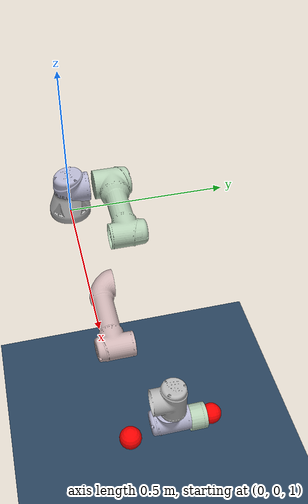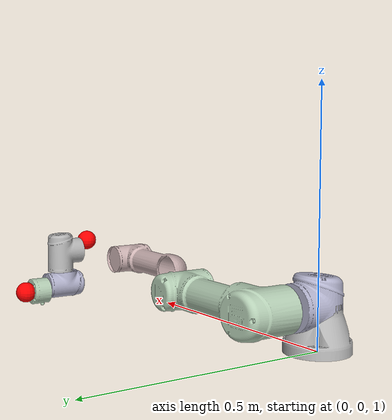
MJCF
<mujoco model="ur5">
  <option iterations="50" timestep="0.002" solver="PGS" gravity="0 0 -9.81" cone="elliptic"/>

  <compiler angle="radian" meshdir="meshes" eulerseq="zyx" autolimits="true" />

  <default>
    <joint limited="true" damping="0.01" armature="0.01" frictionloss="0.01" />
    <geom condim="3" contype="1" conaffinity="15" friction="0.9 0.2 0.2" solref="0.001 2" />
    <motor ctrllimited="true" />
    <default class="link">
      <geom material="link" condim="3" contype="1" conaffinity="0" />
    </default>
  </default>

  <asset>
    <mesh name="base" file="base.stl" />
    <mesh name="shoulder" file="shoulder.stl" />
    <mesh name="upperarm" file="upperarm.stl" />
    <mesh name="forearm" file="forearm.stl" />
    <mesh name="wrist1" file="wrist1.stl" />
    <mesh name="wrist2" file="wrist2.stl" />
    <mesh name="wrist3" file="wrist3.stl" />
    <material name="link" rgba="0.5 0.9 0.2 1" />
    <texture name="skybox" type="skybox" builtin="gradient" rgb1="0.2 0.3 0.4" rgb2="0 0 0" width="1000" height="1000" mark="random" random="0.001" markrgb="1 1 1"/>
    <texture type="2d" name="groundplane" builtin="checker" mark="edge" rgb1="0.2 0.3 0.4" rgb2="0.1 0.2 0.3" markrgb="0.8 0.8 0.8" width="1000" height="1000"/>
    <material name="groundplane" texture="groundplane" texuniform="true" texrepeat="5 5" reflectance="0.2"/>
  </asset>

  <worldbody>
    <light directional="true" diffuse="0.4 0.4 0.4" specular="0.1 0.1 0.1" pos="0 0 5.0" dir="0 0 -1" castshadow="false" />
    <light directional="true" diffuse="0.6 0.6 0.6" specular="0.2 0.2 0.2" pos="0 0 4" dir="0 0 -1" />
    <geom name="ground" type="plane" pos="0 0 0" size="100 100 0.001" quat="1 0 0 0" material="groundplane" condim="3" conaffinity="15" />
    <camera name="fixed" pos="0 -3.0 0.6831486113504706" xyaxes="1 0 0 0 0 1" />
    <camera name="track" mode="trackcom" pos="0 -3.0 0.6831486113504706" xyaxes="1 0 0 0 0 1" />
    <body name="root" pos="0 0 1" quat="1 0 0 0">
      <site name="imu" size="0.01" pos="0 0 0" />
      <geom quat="-1 0 0 0" type="mesh" rgba="0.7 0.7 0.7 1" mesh="base"  class="link" />
      <body name="shoulder_link" pos="0 0 0.089159" quat="0 0 0 1">
        <inertial pos="0 0 0" mass="3.7" diaginertia="0.0149724 0.0149724 0.0104063" />
        <joint name="shoulder_pan_joint" pos="0 0 0" axis="0 0 1" range="-6.28319 6.28319" actuatorfrcrange="-150 150" />
        <geom quat="0 0 0 1" type="mesh" rgba="0.7 0.7 0.8 1" mesh="shoulder"  class="link" />
        <body name="upper_arm_link" quat="0.707107 0.707107 0 0">
          <inertial pos="-0.2125 0 0.136" mass="8.393" diaginertia="0.133886 0.133886 0.0151074" />
          <joint name="shoulder_lift_joint" pos="0 0 0" axis="0 0 1" range="-6.28319 6.28319" actuatorfrcrange="-150 150" />
          <geom pos="0 0 0.13585" quat="0.5 0.5 -0.5 -0.5" type="mesh" rgba="0.7 0.8 0.7 1" mesh="upperarm"  class="link" />
          <body name="forearm_link" pos="-0.425 0 0">
            <inertial pos="-0.196125 0 0.0165" mass="2.275" diaginertia="0.0312168 0.0312168 0.004095" />
            <joint name="elbow_joint" pos="0 0 0" axis="0 0 1" range="-3.14159 3.14159" actuatorfrcrange="-150 150" />
            <geom pos="0 0 0.0165" quat="0.5 0.5 -0.5 -0.5" type="mesh" rgba="0.8 0.7 0.7 1" mesh="forearm"  class="link" />
            <body name="wrist_1_link" pos="-0.39225 0 0.10915">
              <inertial pos="0 0 0" quat="0.5 0.5 -0.5 0.5" mass="1.219" diaginertia="0.0021942 0.00201389 0.00201389" />
              <joint name="wrist_1_joint" pos="0 0 0" axis="0 0 1" range="-6.28319 6.28319" actuatorfrcrange="-28 28" />
              <geom pos="0 0 -0.093" quat="0.707107 0.707107 0 0" type="mesh" rgba="0.7 0.7 0.7 1" mesh="wrist1"  class="link" />
              <body name="wrist_2_link" pos="0 -0.09465 -1.9413e-11" quat="0.707107 0.707107 0 0">
                <inertial pos="0 0 0" quat="0.5 0.5 -0.5 0.5" mass="1.219" diaginertia="0.0021942 0.00183104 0.00183104" />
                <joint name="wrist_2_joint" pos="0 0 0" axis="0 0 1" range="-6.28319 6.28319" actuatorfrcrange="-28 28" />
                <geom pos="0 0 -0.095" quat="1 0 0 0" type="mesh" rgba="0.7 0.7 0.8 1" mesh="wrist2"  class="link" />
                <body name="wrist_3_link" pos="0 0.0823 -1.688e-11" quat="0.707107 -0.707107 0 0">
                  <inertial pos="0 0 -0.01525" quat="0.5 0.5 -0.5 0.5" mass="0.1879" diaginertia="0.000132117 8.06247e-05 8.06247e-05" />
                  <joint name="wrist_3_joint" pos="0 0 0" axis="0 0 1" range="-6.28319 6.28319" actuatorfrcrange="-28 28" />
                  <geom pos="0 0 -0.0818" quat="0.707107 0.707107 0 0" type="mesh" rgba="0.7 0.8 0.7 1" mesh="wrist3"  class="link" />
                  <geom name="end_effector" pos="0 0 0.025" quat="1 0 0 0" type="sphere" rgba="1 0 0 1" size="0.025" condim="1"/>

                </body>
              </body>
            </body>
          </body>
        </body>
      </body>
    </body>

    <body name="LINK_BASE_X" pos="0.9 0 1.1" quat="1 0 0 0">
        <joint name="J_BASE_X" type="slide" pos="0 0 0" axis="1 0 0" range="-10 10" actuatorfrcrange="-1000 1000" />
        <inertial pos="0 0 0" quat="1 0 0 0" mass="0.001" diaginertia="0.000001 0.000001 0.000001"/>
        <body name="LINK_BASE_Y" pos="0 0 0" quat="1 0 0 0">
            <joint name="J_BASE_Y" type="slide" pos="0 0 0" axis="0 1 0" range="-10 10" actuatorfrcrange="-1000 1000" />
            <inertial pos="0 0 0" quat="1 0 0 0" mass="0.001" diaginertia="0.000001 0.000001 0.000001"/>
            <body name="sphere" pos="0 0 0" quat="1 0 0 0">
                <geom name="sphere" type="sphere" size="0.025" pos="0 0 0" quat="1 0 0 0" rgba="1 0 0 1"/>
                <joint name="J_BASE_Z" type="slide" pos="0 0 0" axis="0 0 1" range="-10 10" actuatorfrcrange="-1000 1000" />
            </body>
        </body>
    </body>
  </worldbody>

  <actuator>
    <motor name="shoulder_pan_joint" joint="shoulder_pan_joint" ctrllimited="true" ctrlrange="-150 150" gear="1" />
    <motor name="shoulder_lift_joint" joint="shoulder_lift_joint" ctrllimited="true" ctrlrange="-150 150" gear="1" />
    <motor name="elbow_joint" joint="elbow_joint" ctrllimited="true" ctrlrange="-150 150" gear="1" />
    <motor name="wrist_1_joint" joint="wrist_1_joint" ctrllimited="true" ctrlrange="-28 28" gear="1" />
    <motor name="wrist_2_joint" joint="wrist_2_joint" ctrllimited="true" ctrlrange="-28 28" gear="1" />
    <motor name="wrist_3_joint" joint="wrist_3_joint" ctrllimited="true" ctrlrange="-28 28" gear="1" />
    <position name="J_BASE_X" joint="J_BASE_X" ctrllimited="true" ctrlrange="-10 10" forcerange="-1000 1000" kp="1000" kv="10"/>
    <position name="J_BASE_Y" joint="J_BASE_Y" ctrllimited="true" ctrlrange="-10 10" forcerange="-1000 1000" kp="1000" kv="10"/>
    <position name="J_BASE_Z" joint="J_BASE_Z" ctrllimited="true" ctrlrange="-10 10" forcerange="-1000 1000" kp="1000" kv="10"/>
  </actuator>
</mujoco>
